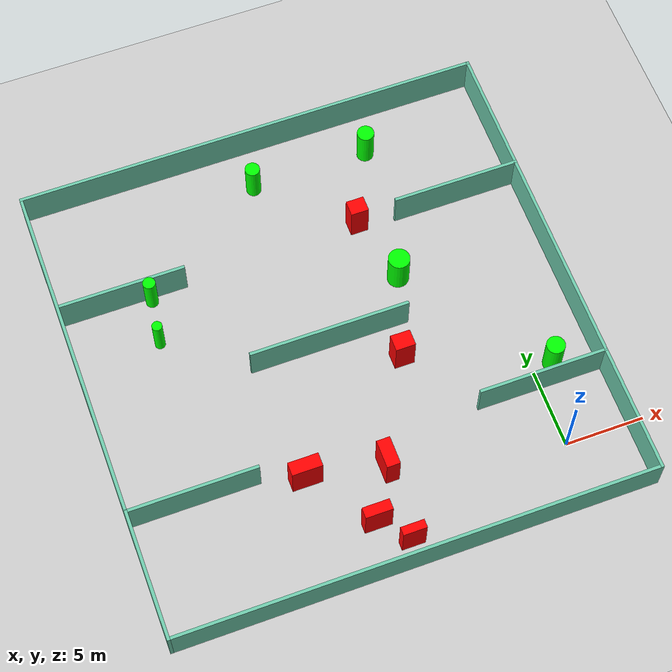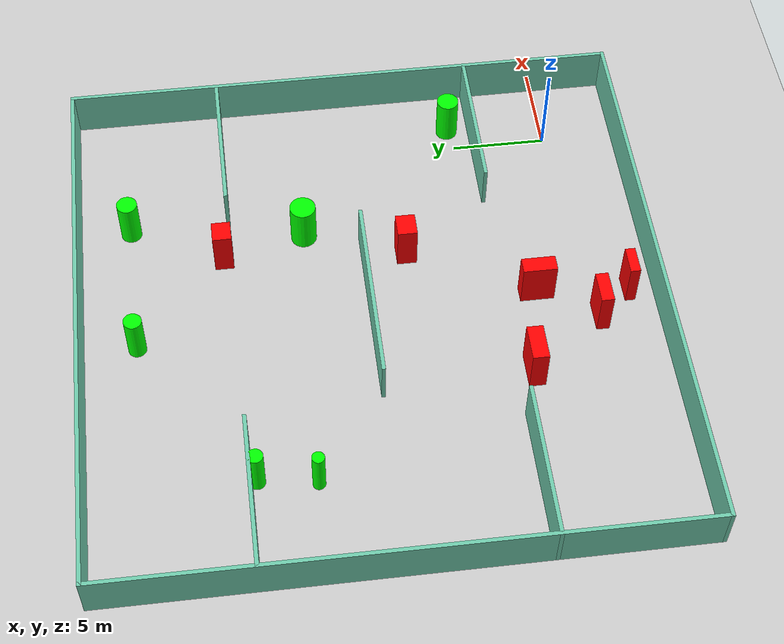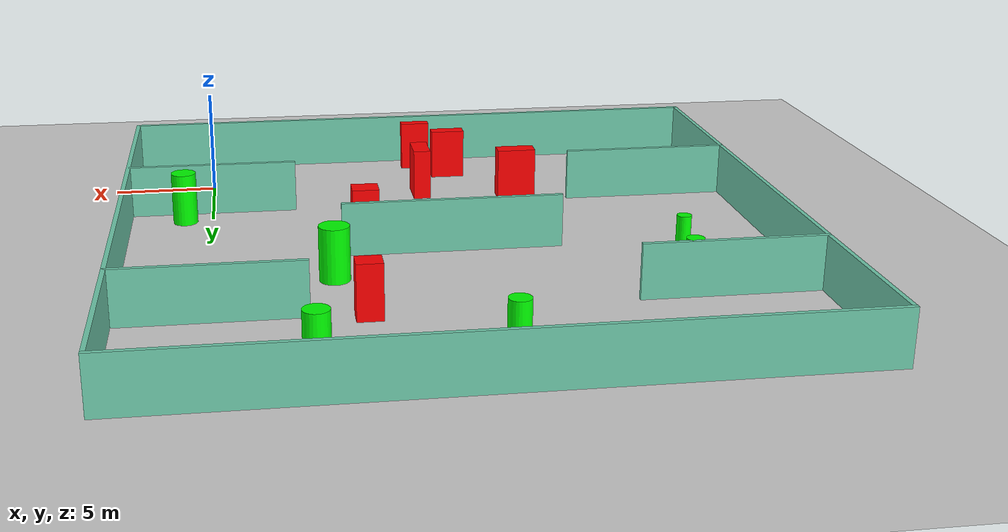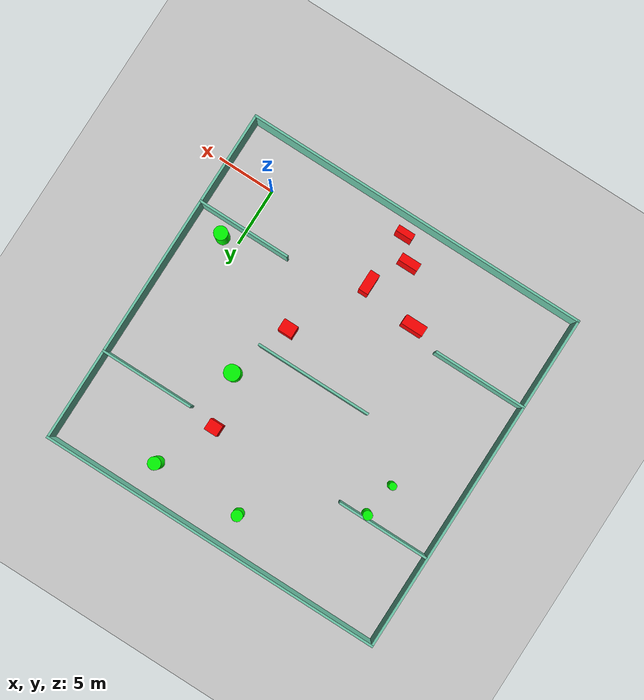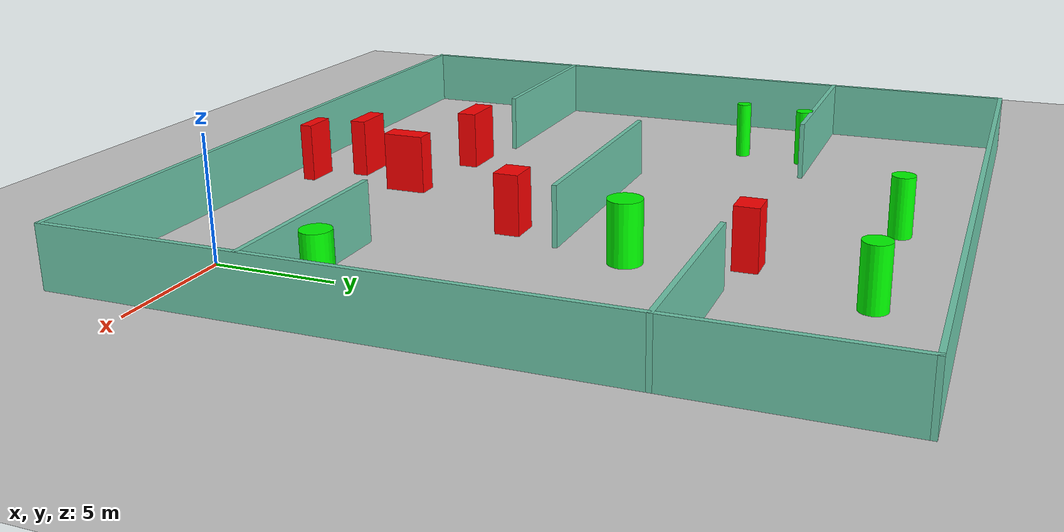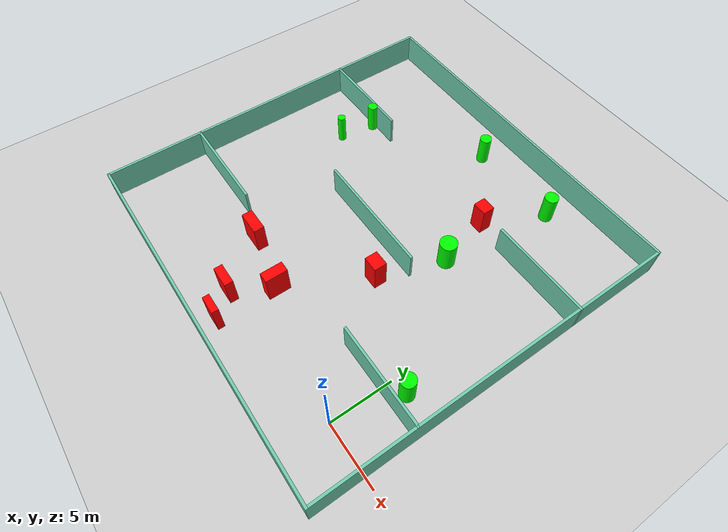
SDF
<sdf version="1.7">
 <world name="default">
  <light name="sun" type="directional">
   <pose>0 0 10 0 -0 0</pose>
   <diffuse>0.8 0.8 0.8 1</diffuse>
   <specular>0.2 0.2 0.2 1</specular>
   <attenuation>
    <range>1000</range>
    <constant>0.9</constant>
    <linear>0.01</linear>
    <quadratic>0.001</quadratic>
   </attenuation>
   <direction>-0.5 0.1 -0.9</direction>
   <spot><inner_angle>0</inner_angle><outer_angle>0</outer_angle><falloff>0</falloff></spot>
  </light>
  <model name="ground_plane">
   <static>1</static>
   <link name="link">
    <collision name="collision">
     <geometry><plane><normal>0 0 1</normal><size>100 100</size></plane></geometry>
     <surface>
      <contact><collide_bitmask>65535</collide_bitmask></contact>
      <friction><ode><mu>100</mu><mu2>50</mu2></ode></friction>
     </surface>
    </collision>
    <visual name="visual">
     <cast_shadows>0</cast_shadows>
     <geometry><plane><normal>0 0 1</normal><size>100 100</size></plane></geometry>
     <material>
      <script><uri>file://media/materials/scripts/gazebo.material</uri><name>Gazebo/Grey</name></script>
     </material>
    </visual>
   </link>
  </model>
  <gravity>0 0 -9.8</gravity>
  <magnetic_field>6e-06 2.3e-05 -4.2e-05</magnetic_field>
  <atmosphere type="adiabatic"/>
  <physics type="ode">
   <max_step_size>0.001</max_step_size>
   <real_time_factor>1</real_time_factor>
   <real_time_update_rate>1000</real_time_update_rate>
  </physics>
  <scene><ambient>0.4 0.4 0.4 1</ambient><background>0.7 0.7 0.7 1</background><shadows>1</shadows></scene>
  <spherical_coordinates>
   <surface_model>EARTH_WGS84</surface_model>
   <latitude_deg>0</latitude_deg>
   <longitude_deg>0</longitude_deg>
   <elevation>0</elevation>
   <heading_deg>0</heading_deg>
  </spherical_coordinates>
  <model name="my_base_walls">
   <link name="Wall_10">
    <collision name="Wall_10_Collision">
     <geometry><box><size>8.2 0.2 2.5</size></box></geometry>
     <pose>0 0 1.25 0 -0 0</pose>
    </collision>
    <visual name="Wall_10_Visual">
     <pose>0 0 1.25 0 -0 0</pose>
     <geometry><box><size>8.2 0.2 2.5</size></box></geometry>
     <material>
      <script><uri>file://media/materials/scripts/gazebo.material</uri><name>Gazebo/Grey</name></script>
      <ambient>0.435294 0.796078 0.67451 1</ambient>
     </material>
     <meta><layer>0</layer></meta>
    </visual>
    <pose>-11 -7 0 0 -0 0</pose>
   </link>
   <link name="Wall_12">
    <collision name="Wall_12_Collision">
     <geometry><box><size>8.2 0.2 2.5</size></box></geometry>
     <pose>0 0 1.25 0 -0 0</pose>
    </collision>
    <visual name="Wall_12_Visual">
     <pose>0 0 1.25 0 -0 0</pose>
     <geometry><box><size>8.2 0.2 2.5</size></box></geometry>
     <material>
      <script><uri>file://media/materials/scripts/gazebo.material</uri><name>Gazebo/Grey</name></script>
      <ambient>0.435294 0.796078 0.67451 1</ambient>
     </material>
     <meta><layer>0</layer></meta>
    </visual>
    <pose>-11 7 0 0 -0 0</pose>
   </link>
   <link name="Wall_14">
    <collision name="Wall_14_Collision">
     <geometry><box><size>8.2 0.2 2.5</size></box></geometry>
     <pose>0 0 1.25 0 -0 0</pose>
    </collision>
    <visual name="Wall_14_Visual">
     <pose>0 0 1.25 0 -0 0</pose>
     <geometry><box><size>8.2 0.2 2.5</size></box></geometry>
     <material>
      <script><uri>file://media/materials/scripts/gazebo.material</uri><name>Gazebo/Grey</name></script>
      <ambient>0.435294 0.796078 0.67451 1</ambient>
     </material>
     <meta><layer>0</layer></meta>
    </visual>
    <pose>11 7 0 0 -0 3.14159</pose>
   </link>
   <link name="Wall_16">
    <collision name="Wall_16_Collision">
     <geometry><box><size>10.2 0.2 2.5</size></box></geometry>
     <pose>0 0 1.25 0 -0 0</pose>
    </collision>
    <visual name="Wall_16_Visual">
     <pose>0 0 1.25 0 -0 0</pose>
     <geometry><box><size>10.2 0.2 2.5</size></box></geometry>
     <material>
      <script><uri>file://media/materials/scripts/gazebo.material</uri><name>Gazebo/Grey</name></script>
      <ambient>0.435294 0.796078 0.67451 1</ambient>
     </material>
     <meta><layer>0</layer></meta>
    </visual>
    <pose>0 0 0 0 -0 3.14159</pose>
   </link>
   <link name="Wall_2">
    <collision name="Wall_2_Collision">
     <geometry><box><size>30.2 0.2 2.5</size></box></geometry>
     <pose>0 0 1.25 0 -0 0</pose>
    </collision>
    <visual name="Wall_2_Visual">
     <pose>0 0 1.25 0 -0 0</pose>
     <geometry><box><size>30.2 0.2 2.5</size></box></geometry>
     <material>
      <script><uri>file://media/materials/scripts/gazebo.material</uri><name>Gazebo/Grey</name></script>
      <ambient>0.435294 0.796078 0.67451 1</ambient>
     </material>
     <meta><layer>0</layer></meta>
    </visual>
    <pose>0 -15 0 0 -0 3.14159</pose>
   </link>
   <link name="Wall_3">
    <collision name="Wall_3_Collision">
     <geometry><box><size>30.2 0.2 2.5</size></box></geometry>
     <pose>0 0 1.25 0 -0 0</pose>
    </collision>
    <visual name="Wall_3_Visual">
     <pose>0 0 1.25 0 -0 0</pose>
     <geometry><box><size>30.2 0.2 2.5</size></box></geometry>
     <material>
      <script><uri>file://media/materials/scripts/gazebo.material</uri><name>Gazebo/Grey</name></script>
      <ambient>0.435294 0.796078 0.67451 1</ambient>
     </material>
     <meta><layer>0</layer></meta>
    </visual>
    <pose>-15 0 0 0 -0 1.5708</pose>
   </link>
   <link name="Wall_4">
    <collision name="Wall_4_Collision">
     <geometry><box><size>30.2 0.2 2.5</size></box></geometry>
     <pose>0 0 1.25 0 -0 0</pose>
    </collision>
    <visual name="Wall_4_Visual">
     <pose>0 0 1.25 0 -0 0</pose>
     <geometry><box><size>30.2 0.2 2.5</size></box></geometry>
     <material>
      <script><uri>file://media/materials/scripts/gazebo.material</uri><name>Gazebo/Grey</name></script>
      <ambient>0.435294 0.796078 0.67451 1</ambient>
     </material>
     <meta><layer>0</layer></meta>
    </visual>
    <pose>0 15 0 0 -0 0</pose>
   </link>
   <link name="Wall_6">
    <collision name="Wall_6_Collision">
     <geometry><box><size>30.2 0.2 2.5</size></box></geometry>
     <pose>0 0 1.25 0 -0 0</pose>
    </collision>
    <visual name="Wall_6_Visual">
     <pose>0 0 1.25 0 -0 0</pose>
     <geometry><box><size>30.2 0.2 2.5</size></box></geometry>
     <material>
      <script><uri>file://media/materials/scripts/gazebo.material</uri><name>Gazebo/Grey</name></script>
      <ambient>0.435294 0.796078 0.67451 1</ambient>
     </material>
     <meta><layer>0</layer></meta>
    </visual>
    <pose>15 0 0 0 -0 1.5708</pose>
   </link>
   <link name="Wall_8">
    <collision name="Wall_8_Collision">
     <geometry><box><size>8.2 0.2 2.5</size></box></geometry>
     <pose>0 0 1.25 0 -0 0</pose>
    </collision>
    <visual name="Wall_8_Visual">
     <pose>0 0 1.25 0 -0 0</pose>
     <geometry><box><size>8.2 0.2 2.5</size></box></geometry>
     <material>
      <script><uri>file://media/materials/scripts/gazebo.material</uri><name>Gazebo/Grey</name></script>
      <ambient>0.435294 0.796078 0.67451 1</ambient>
     </material>
     <meta><layer>0</layer></meta>
    </visual>
    <pose>11 -7 0 0 -0 3.14159</pose>
   </link>
   <static>1</static>
   <pose>-11 11 0 0 -0 0</pose>
  </model>
  <model name="cylinder1">
   <static>1</static>
   <link name="link">
    <inertial>
     <mass>1</mass>
     <inertia><ixx>0.5</ixx><ixy>0</ixy><ixz>0</ixz><iyy>0.5</iyy><iyz>0</iyz><izz>1</izz></inertia>
    </inertial>
    <collision name="collision">
     <geometry><cylinder><radius>0.39713426069911295</radius><length>2.5</length></cylinder></geometry>
    </collision>
    <visual name="visual">
     <geometry><cylinder><radius>0.39713426069911295</radius><length>2.5</length></cylinder></geometry>
     <material>
      <ambient>0 1 0 1</ambient>
      <diffuse>0 1 0 1</diffuse>
      <specular>0.1 0.1 0.1 1</specular>
      <emissive>0 0 0 0</emissive>
     </material>
    </visual>
   </link>
   <pose>-20.28776942494959 17.6588259492471 1.25 0 0 0</pose>
  </model>
  <model name="cylinder2">
   <static>1</static>
   <link name="link">
    <inertial>
     <mass>1</mass>
     <inertia><ixx>0.5</ixx><ixy>0</ixy><ixz>0</ixz><iyy>0.5</iyy><iyz>0</iyz><izz>1</izz></inertia>
    </inertial>
    <collision name="collision">
     <geometry><cylinder><radius>0.4739017625690678</radius><length>2.5</length></cylinder></geometry>
    </collision>
    <visual name="visual">
     <geometry><cylinder><radius>0.4739017625690678</radius><length>2.5</length></cylinder></geometry>
     <material>
      <ambient>0 1 0 1</ambient>
      <diffuse>0 1 0 1</diffuse>
      <specular>0.1 0.1 0.1 1</specular>
      <emissive>0 0 0 0</emissive>
     </material>
    </visual>
   </link>
   <pose>-11.7367590941383 23.169167069464002 1.25 0 0 0</pose>
  </model>
  <model name="cylinder3">
   <static>1</static>
   <link name="link">
    <inertial>
     <mass>1</mass>
     <inertia><ixx>0.5</ixx><ixy>0</ixy><ixz>0</ixz><iyy>0.5</iyy><iyz>0</iyz><izz>1</izz></inertia>
    </inertial>
    <collision name="collision">
     <geometry><cylinder><radius>0.6860405969462615</radius><length>2.5</length></cylinder></geometry>
    </collision>
    <visual name="visual">
     <geometry><cylinder><radius>0.6860405969462615</radius><length>2.5</length></cylinder></geometry>
     <material>
      <ambient>0 1 0 1</ambient>
      <diffuse>0 1 0 1</diffuse>
      <specular>0.1 0.1 0.1 1</specular>
      <emissive>0 0 0 0</emissive>
     </material>
    </visual>
   </link>
   <pose>-5.371525988947489 14.00752809160738 1.25 0 0 0</pose>
  </model>
  <model name="cylinder4">
   <static>1</static>
   <link name="link">
    <inertial>
     <mass>1</mass>
     <inertia><ixx>0.5</ixx><ixy>0</ixy><ixz>0</ixz><iyy>0.5</iyy><iyz>0</iyz><izz>1</izz></inertia>
    </inertial>
    <collision name="collision">
     <geometry><cylinder><radius>0.3237356951539532</radius><length>2.5</length></cylinder></geometry>
    </collision>
    <visual name="visual">
     <geometry><cylinder><radius>0.3237356951539532</radius><length>2.5</length></cylinder></geometry>
     <material>
      <ambient>0 1 0 1</ambient>
      <diffuse>0 1 0 1</diffuse>
      <specular>0.1 0.1 0.1 1</specular>
      <emissive>0 0 0 0</emissive>
     </material>
    </visual>
   </link>
   <pose>-20.716618269851654 14.695963411484136 1.25 0 0 0</pose>
  </model>
  <model name="cylinder5">
   <static>1</static>
   <link name="link">
    <inertial>
     <mass>1</mass>
     <inertia><ixx>0.5</ixx><ixy>0</ixy><ixz>0</ixz><iyy>0.5</iyy><iyz>0</iyz><izz>1</izz></inertia>
    </inertial>
    <collision name="collision">
     <geometry><cylinder><radius>0.585843970042482</radius><length>2.5</length></cylinder></geometry>
    </collision>
    <visual name="visual">
     <geometry><cylinder><radius>0.585843970042482</radius><length>2.5</length></cylinder></geometry>
     <material>
      <ambient>0 1 0 1</ambient>
      <diffuse>0 1 0 1</diffuse>
      <specular>0.1 0.1 0.1 1</specular>
      <emissive>0 0 0 0</emissive>
     </material>
    </visual>
   </link>
   <pose>1.310330620322116 5.274564896077079 1.25 0 0 0</pose>
  </model>
  <model name="cylinder6">
   <static>1</static>
   <link name="link">
    <inertial>
     <mass>1</mass>
     <inertia><ixx>0.5</ixx><ixy>0</ixy><ixz>0</ixz><iyy>0.5</iyy><iyz>0</iyz><izz>1</izz></inertia>
    </inertial>
    <collision name="collision">
     <geometry><cylinder><radius>0.5457502695106977</radius><length>2.5</length></cylinder></geometry>
    </collision>
    <visual name="visual">
     <geometry><cylinder><radius>0.5457502695106977</radius><length>2.5</length></cylinder></geometry>
     <material>
      <ambient>0 1 0 1</ambient>
      <diffuse>0 1 0 1</diffuse>
      <specular>0.1 0.1 0.1 1</specular>
      <emissive>0 0 0 0</emissive>
     </material>
    </visual>
   </link>
   <pose>-4.103292722402392 23.232108734328403 1.25 0 0 0</pose>
  </model>
  <model name="box1">
   <static>1</static>
   <link name="link">
    <inertial>
     <mass>1</mass>
     <inertia><ixx>0.083</ixx><ixy>0</ixy><ixz>0</ixz><iyy>0.083</iyy><iyz>0</iyz><izz>0.083</izz></inertia>
    </inertial>
    <collision name="collision">
     <geometry><box><size>1.2617051675846453 1.0403752207035122 2.5</size></box></geometry>
    </collision>
    <visual name="visual">
     <geometry><box><size>1.2617051675846453 1.0403752207035122 2.5</size></box></geometry>
     <material>
      <ambient>1 0 0 1</ambient>
      <diffuse>1 0 0 1</diffuse>
      <specular>0.1 0.1 0.1 1</specular>
      <emissive>0 0 0 0</emissive>
     </material>
    </visual>
    <sensor name="my_contact" type="contact">
     <contact><collision>box_collision</collision><topic>__default_topic__</topic></contact>
    </sensor>
   </link>
   <pose>-7.1692199561141265 8.714903764897123 1.25 0 0 0</pose>
  </model>
  <model name="box2">
   <static>1</static>
   <link name="link">
    <inertial>
     <mass>1</mass>
     <inertia><ixx>0.083</ixx><ixy>0</ixy><ixz>0</ixz><iyy>0.083</iyy><iyz>0</iyz><izz>0.083</izz></inertia>
    </inertial>
    <collision name="collision">
     <geometry><box><size>1.1422773836962716 0.998620247480836 2.5</size></box></geometry>
    </collision>
    <visual name="visual">
     <geometry><box><size>1.1422773836962716 0.998620247480836 2.5</size></box></geometry>
     <material>
      <ambient>1 0 0 1</ambient>
      <diffuse>1 0 0 1</diffuse>
      <specular>0.1 0.1 0.1 1</specular>
      <emissive>0 0 0 0</emissive>
     </material>
    </visual>
    <sensor name="my_contact" type="contact">
     <contact><collision>box_collision</collision><topic>__default_topic__</topic></contact>
    </sensor>
   </link>
   <pose>-6.473521451208969 18.383149385950386 1.25 0 0 0</pose>
  </model>
  <model name="box3">
   <static>1</static>
   <link name="link">
    <inertial>
     <mass>1</mass>
     <inertia><ixx>0.083</ixx><ixy>0</ixy><ixz>0</ixz><iyy>0.083</iyy><iyz>0</iyz><izz>0.083</izz></inertia>
    </inertial>
    <collision name="collision">
     <geometry><box><size>0.8498862491240382 1.7790700510297293 2.5</size></box></geometry>
    </collision>
    <visual name="visual">
     <geometry><box><size>0.8498862491240382 1.7790700510297293 2.5</size></box></geometry>
     <material>
      <ambient>1 0 0 1</ambient>
      <diffuse>1 0 0 1</diffuse>
      <specular>0.1 0.1 0.1 1</specular>
      <emissive>0 0 0 0</emissive>
     </material>
    </visual>
    <sensor name="my_contact" type="contact">
     <contact><collision>box_collision</collision><topic>__default_topic__</topic></contact>
    </sensor>
   </link>
   <pose>-10.575193586996251 2.2486508618505 1.25 0 0 0</pose>
  </model>
  <model name="box4">
   <static>1</static>
   <link name="link">
    <inertial>
     <mass>1</mass>
     <inertia><ixx>0.083</ixx><ixy>0</ixy><ixz>0</ixz><iyy>0.083</iyy><iyz>0</iyz><izz>0.083</izz></inertia>
    </inertial>
    <collision name="collision">
     <geometry><box><size>1.9077675433149348 0.8512024145103738 2.5</size></box></geometry>
    </collision>
    <visual name="visual">
     <geometry><box><size>1.9077675433149348 0.8512024145103738 2.5</size></box></geometry>
     <material>
      <ambient>1 0 0 1</ambient>
      <diffuse>1 0 0 1</diffuse>
      <specular>0.1 0.1 0.1 1</specular>
      <emissive>0 0 0 0</emissive>
     </material>
    </visual>
    <sensor name="my_contact" type="contact">
     <contact><collision>box_collision</collision><topic>__default_topic__</topic></contact>
    </sensor>
   </link>
   <pose>-15.373349552775522 3.188544246064372 1.25 0 0 0</pose>
  </model>
  <model name="box5">
   <static>1</static>
   <link name="link">
    <inertial>
     <mass>1</mass>
     <inertia><ixx>0.083</ixx><ixy>0</ixy><ixz>0</ixz><iyy>0.083</iyy><iyz>0</iyz><izz>0.083</izz></inertia>
    </inertial>
    <collision name="collision">
     <geometry><box><size>1.7041286870451249 0.6756118055747015 2.5</size></box></geometry>
    </collision>
    <visual name="visual">
     <geometry><box><size>1.7041286870451249 0.6756118055747015 2.5</size></box></geometry>
     <material>
      <ambient>1 0 0 1</ambient>
      <diffuse>1 0 0 1</diffuse>
      <specular>0.1 0.1 0.1 1</specular>
      <emissive>0 0 0 0</emissive>
     </material>
    </visual>
    <sensor name="my_contact" type="contact">
     <contact><collision>box_collision</collision><topic>__default_topic__</topic></contact>
    </sensor>
   </link>
   <pose>-12.401961277625844 -0.8038378407467839 1.25 0 0 0</pose>
  </model>
  <model name="box6">
   <static>1</static>
   <link name="link">
    <inertial>
     <mass>1</mass>
     <inertia><ixx>0.083</ixx><ixy>0</ixy><ixz>0</ixz><iyy>0.083</iyy><iyz>0</iyz><izz>0.083</izz></inertia>
    </inertial>
    <collision name="collision">
     <geometry><box><size>1.4723030398361172 0.53381273330152 2.5</size></box></geometry>
    </collision>
    <visual name="visual">
     <geometry><box><size>1.4723030398361172 0.53381273330152 2.5</size></box></geometry>
     <material>
      <ambient>1 0 0 1</ambient>
      <diffuse>1 0 0 1</diffuse>
      <specular>0.1 0.1 0.1 1</specular>
      <emissive>0 0 0 0</emissive>
     </material>
    </visual>
    <sensor name="my_contact" type="contact">
     <contact><collision>box_collision</collision><topic>__default_topic__</topic></contact>
    </sensor>
   </link>
   <pose>-10.867473056459541 -2.5834795426270643 1.25 0 0 0</pose>
  </model>
 </world>
</sdf>
